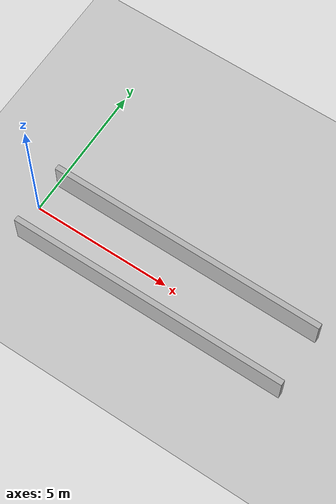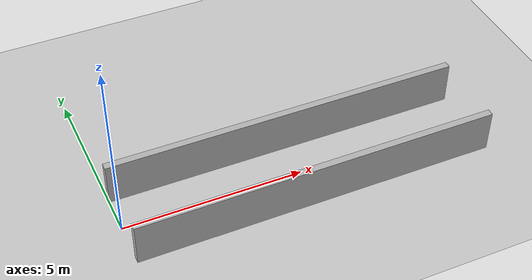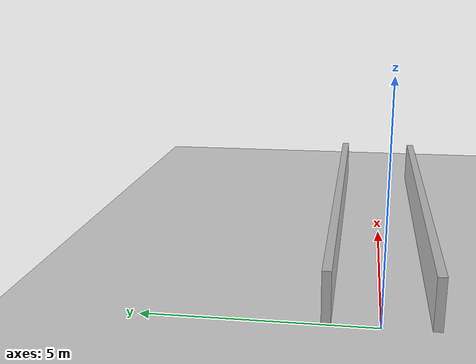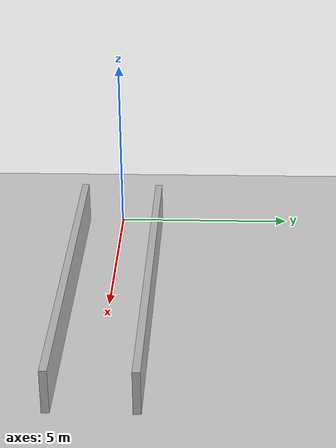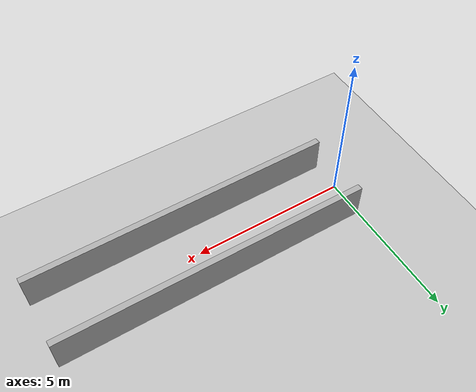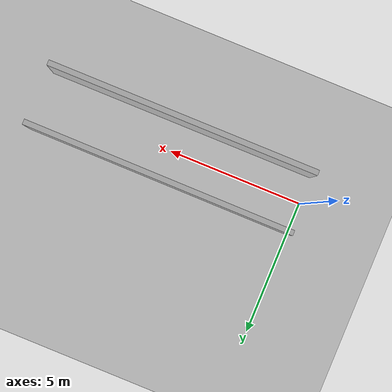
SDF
<?xml version="1.0"?>
<sdf version="1.6">
  <world name="v2-04d-corridor-s4609">
    <gravity>0 0 -9.81</gravity>
    <physics name="v2_deterministic" type="ode">
      <max_step_size>0.002</max_step_size>
      <real_time_update_rate>500</real_time_update_rate>
    </physics>
    <include>
      <uri>model://sun</uri>
    </include>
    <include>
      <uri>model://ground_plane</uri>
    </include>
    <model name="corridor-left">
      <static>true</static>
      <pose>5.014085747 1.103128641 0.600000000 0 0 -0.002459785</pose>
      <link name="link">
        <collision name="collision">
          <geometry>
            <box>
              <size>10.000000 0.200000 1.200000</size>
            </box>
          </geometry>
        </collision>
        <visual name="visual">
          <geometry>
            <box>
              <size>10.000000 0.200000 1.200000</size>
            </box>
          </geometry>
        </visual>
      </link>
    </model>
    <model name="corridor-right">
      <static>true</static>
      <pose>5.006481518 -1.104173241 0.600000000 0 0 0.001052826</pose>
      <link name="link">
        <collision name="collision">
          <geometry>
            <box>
              <size>10.000000 0.200000 1.200000</size>
            </box>
          </geometry>
        </collision>
        <visual name="visual">
          <geometry>
            <box>
              <size>10.000000 0.200000 1.200000</size>
            </box>
          </geometry>
        </visual>
      </link>
    </model>
  </world>
</sdf>
